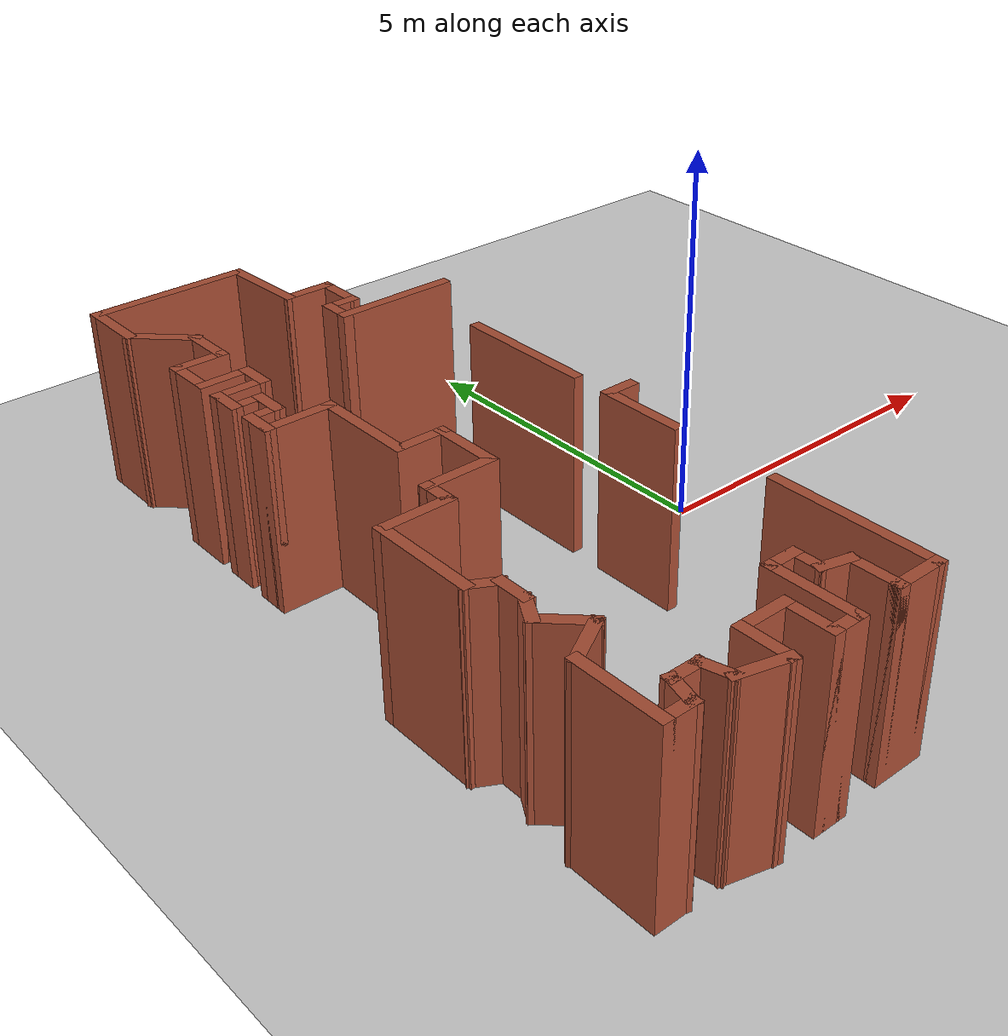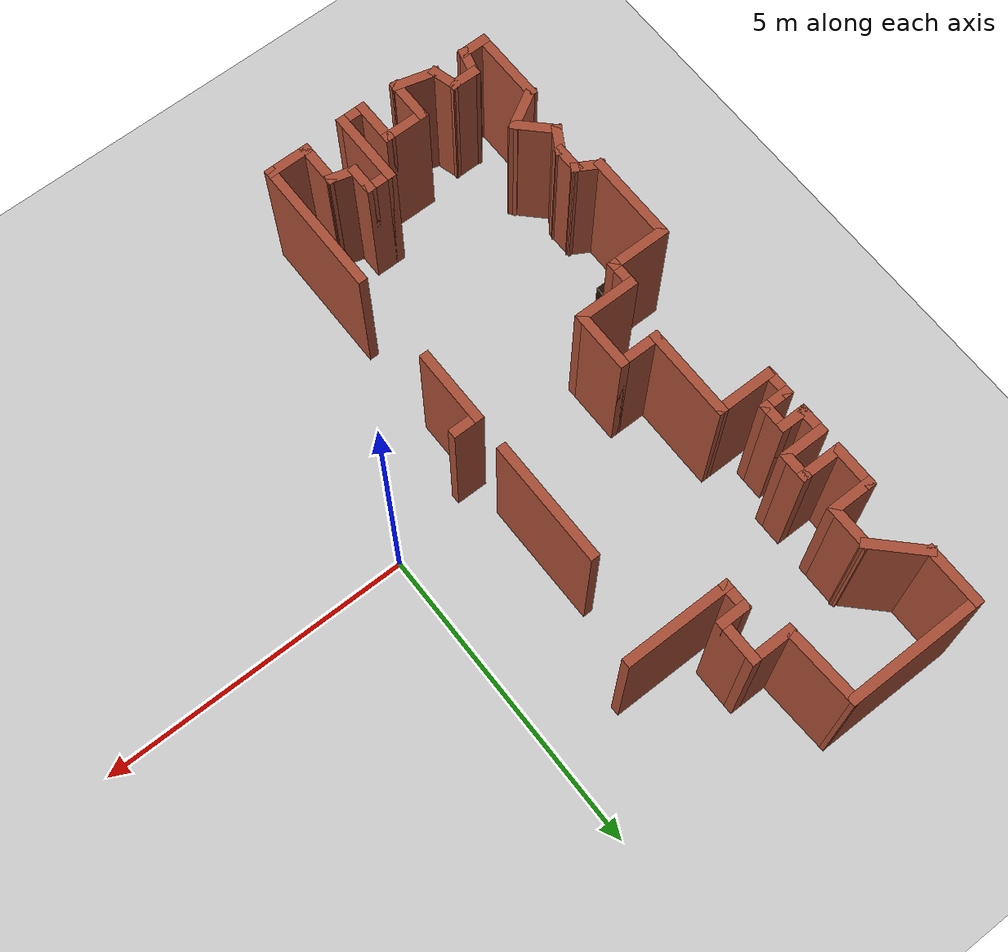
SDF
<sdf version="1.6">
 <world name="default">
  <model name="ground_plane">
   <static>1</static>
   <link name="link">
    <collision name="collision">
     <geometry><plane><normal>0 0 1</normal><size>100 100</size></plane></geometry>
     <surface>
      <contact><collide_bitmask>65535</collide_bitmask></contact>
      <friction><ode><mu>100</mu><mu2>50</mu2></ode></friction>
     </surface>
    </collision>
    <visual name="visual">
     <cast_shadows>0</cast_shadows>
     <geometry><plane><normal>0 0 1</normal><size>100 100</size></plane></geometry>
     <material>
      <script><uri>file://media/materials/scripts/gazebo.material</uri><name>Gazebo/Grey</name></script>
     </material>
    </visual>
   </link>
  </model>
  <model name="map_59">
   <pose>1.25432 0.29643 0 0 -0 0</pose>
   <link name="Wall_0">
    <collision name="Wall_0_Collision">
     <geometry><box><size>2.25 0.15 2.5</size></box></geometry>
     <pose>0 0 1.25 0 -0 0</pose>
    </collision>
    <visual name="Wall_0_Visual">
     <pose>0 0 1.25 0 -0 0</pose>
     <geometry><box><size>2.25 0.15 2.5</size></box></geometry>
     <material>
      <script><uri>file://media/materials/scripts/gazebo.material</uri><name>Gazebo/Bricks</name></script>
      <ambient>1 1 1 1</ambient>
     </material>
     <meta><layer>0</layer></meta>
    </visual>
    <pose>-5.34713 5.38602 0 0 -0 3.14159</pose>
   </link>
   <link name="Wall_1">
    <collision name="Wall_1_Collision">
     <geometry><box><size>1 0.15 2.5</size></box></geometry>
     <pose>0 0 1.25 0 -0 0</pose>
    </collision>
    <visual name="Wall_1_Visual">
     <pose>0 0 1.25 0 -0 0</pose>
     <geometry><box><size>1 0.15 2.5</size></box></geometry>
     <material>
      <script><uri>file://media/materials/scripts/gazebo.material</uri><name>Gazebo/Bricks</name></script>
      <ambient>1 1 1 1</ambient>
     </material>
     <meta><layer>0</layer></meta>
    </visual>
    <pose>-6.39713 4.96102 0 0 -0 -1.5708</pose>
   </link>
   <link name="Wall_166">
    <collision name="Wall_166_Collision">
     <geometry><box><size>1.25 0.15 2.5</size></box></geometry>
     <pose>0 0 1.25 0 -0 0</pose>
    </collision>
    <visual name="Wall_166_Visual">
     <pose>0 0 1.25 0 -0 0</pose>
     <geometry><box><size>1.25 0.15 2.5</size></box></geometry>
     <material>
      <script><uri>file://media/materials/scripts/gazebo.material</uri><name>Gazebo/Bricks</name></script>
      <ambient>1 1 1 1</ambient>
     </material>
     <meta><layer>0</layer></meta>
    </visual>
    <pose>-2.91013 -1.14005 0 0 -0 1.5708</pose>
   </link>
   <link name="Wall_167">
    <collision name="Wall_167_Collision">
     <geometry><box><size>0.5 0.15 2.5</size></box></geometry>
     <pose>0 0 1.25 0 -0 0</pose>
    </collision>
    <visual name="Wall_167_Visual">
     <pose>0 0 1.25 0 -0 0</pose>
     <geometry><box><size>0.5 0.15 2.5</size></box></geometry>
     <material>
      <script><uri>file://media/materials/scripts/gazebo.material</uri><name>Gazebo/Bricks</name></script>
      <ambient>1 1 1 1</ambient>
     </material>
     <meta><layer>0</layer></meta>
    </visual>
    <pose>-2.73513 -0.590047 0 0 -0 0</pose>
   </link>
   <link name="Wall_17">
    <collision name="Wall_17_Collision">
     <geometry><box><size>0.5 0.15 2.5</size></box></geometry>
     <pose>0 0 1.25 0 -0 0</pose>
    </collision>
    <visual name="Wall_17_Visual">
     <pose>0 0 1.25 0 -0 0</pose>
     <geometry><box><size>0.5 0.15 2.5</size></box></geometry>
     <material>
      <script><uri>file://media/materials/scripts/gazebo.material</uri><name>Gazebo/Bricks</name></script>
      <ambient>1 1 1 1</ambient>
     </material>
     <meta><layer>0</layer></meta>
    </visual>
    <pose>-6.39609 2.20998 0 0 -0 -1.5708</pose>
   </link>
   <link name="Wall_170">
    <collision name="Wall_170_Collision">
     <geometry><box><size>2 0.15 2.5</size></box></geometry>
     <pose>0 0 1.25 0 -0 0</pose>
    </collision>
    <visual name="Wall_170_Visual">
     <pose>0 0 1.25 0 -0 0</pose>
     <geometry><box><size>2 0.15 2.5</size></box></geometry>
     <material>
      <script><uri>file://media/materials/scripts/gazebo.material</uri><name>Gazebo/Bricks</name></script>
      <ambient>1 1 1 1</ambient>
     </material>
     <meta><layer>0</layer></meta>
    </visual>
    <pose>-2.91013 0.934953 0 0 -0 1.5708</pose>
   </link>
   <link name="Wall_173">
    <collision name="Wall_173_Collision">
     <geometry><box><size>1.75 0.15 2.5</size></box></geometry>
     <pose>0 0 1.25 0 -0 0</pose>
    </collision>
    <visual name="Wall_173_Visual">
     <pose>0 0 1.25 0 -0 0</pose>
     <geometry><box><size>1.75 0.15 2.5</size></box></geometry>
     <material>
      <script><uri>file://media/materials/scripts/gazebo.material</uri><name>Gazebo/Bricks</name></script>
      <ambient>1 1 1 1</ambient>
     </material>
     <meta><layer>0</layer></meta>
    </visual>
    <pose>-3.19052 3.25995 0 0 -0 3.14159</pose>
   </link>
   <link name="Wall_174">
    <collision name="Wall_174_Collision">
     <geometry><box><size>0.5 0.15 2.5</size></box></geometry>
     <pose>0 0 1.25 0 -0 0</pose>
    </collision>
    <visual name="Wall_174_Visual">
     <pose>0 0 1.25 0 -0 0</pose>
     <geometry><box><size>0.5 0.15 2.5</size></box></geometry>
     <material>
      <script><uri>file://media/materials/scripts/gazebo.material</uri><name>Gazebo/Bricks</name></script>
      <ambient>1 1 1 1</ambient>
     </material>
     <meta><layer>0</layer></meta>
    </visual>
    <pose>-3.99052 3.43495 0 0 -0 1.5708</pose>
   </link>
   <link name="Wall_175">
    <collision name="Wall_175_Collision">
     <geometry><box><size>0.5 0.15 2.5</size></box></geometry>
     <pose>0 0 1.25 0 -0 0</pose>
    </collision>
    <visual name="Wall_175_Visual">
     <pose>0 0 1.25 0 -0 0</pose>
     <geometry><box><size>0.5 0.15 2.5</size></box></geometry>
     <material>
      <script><uri>file://media/materials/scripts/gazebo.material</uri><name>Gazebo/Bricks</name></script>
      <ambient>1 1 1 1</ambient>
     </material>
     <meta><layer>0</layer></meta>
    </visual>
    <pose>-3.81552 3.60995 0 0 -0 0</pose>
   </link>
   <link name="Wall_176">
    <collision name="Wall_176_Collision">
     <geometry><box><size>0.75 0.15 2.5</size></box></geometry>
     <pose>0 0 1.25 0 -0 0</pose>
    </collision>
    <visual name="Wall_176_Visual">
     <pose>0 0 1.25 0 -0 0</pose>
     <geometry><box><size>0.75 0.15 2.5</size></box></geometry>
     <material>
      <script><uri>file://media/materials/scripts/gazebo.material</uri><name>Gazebo/Bricks</name></script>
      <ambient>1 1 1 1</ambient>
     </material>
     <meta><layer>0</layer></meta>
    </visual>
    <pose>-3.64052 3.90995 0 0 -0 1.5708</pose>
   </link>
   <link name="Wall_177">
    <collision name="Wall_177_Collision">
     <geometry><box><size>0.75 0.15 2.5</size></box></geometry>
     <pose>0 0 1.25 0 -0 0</pose>
    </collision>
    <visual name="Wall_177_Visual">
     <pose>0 0 1.25 0 -0 0</pose>
     <geometry><box><size>0.75 0.15 2.5</size></box></geometry>
     <material>
      <script><uri>file://media/materials/scripts/gazebo.material</uri><name>Gazebo/Bricks</name></script>
      <ambient>1 1 1 1</ambient>
     </material>
     <meta><layer>0</layer></meta>
    </visual>
    <pose>-3.94052 4.20995 0 0 -0 3.14159</pose>
   </link>
   <link name="Wall_178">
    <collision name="Wall_178_Collision">
     <geometry><box><size>1.32743 0.15 2.5</size></box></geometry>
     <pose>0 0 1.25 0 -0 0</pose>
    </collision>
    <visual name="Wall_178_Visual">
     <pose>0 0 1.25 0 -0 0</pose>
     <geometry><box><size>1.32743 0.15 2.5</size></box></geometry>
     <material>
      <script><uri>file://media/materials/scripts/gazebo.material</uri><name>Gazebo/Bricks</name></script>
      <ambient>1 1 1 1</ambient>
     </material>
     <meta><layer>0</layer></meta>
    </visual>
    <pose>-4.26883 4.79799 0 0 -0 1.6189</pose>
   </link>
   <link name="Wall_18">
    <collision name="Wall_18_Collision">
     <geometry><box><size>0.5 0.15 2.5</size></box></geometry>
     <pose>0 0 1.25 0 -0 0</pose>
    </collision>
    <visual name="Wall_18_Visual">
     <pose>0 0 1.25 0 -0 0</pose>
     <geometry><box><size>0.5 0.15 2.5</size></box></geometry>
     <material>
      <script><uri>file://media/materials/scripts/gazebo.material</uri><name>Gazebo/Bricks</name></script>
      <ambient>1 1 1 1</ambient>
     </material>
     <meta><layer>0</layer></meta>
    </visual>
    <pose>-6.22109 2.03498 0 0 -0 0</pose>
   </link>
   <link name="Wall_19">
    <collision name="Wall_19_Collision">
     <geometry><box><size>0.5 0.15 2.5</size></box></geometry>
     <pose>0 0 1.25 0 -0 0</pose>
    </collision>
    <visual name="Wall_19_Visual">
     <pose>0 0 1.25 0 -0 0</pose>
     <geometry><box><size>0.5 0.15 2.5</size></box></geometry>
     <material>
      <script><uri>file://media/materials/scripts/gazebo.material</uri><name>Gazebo/Bricks</name></script>
      <ambient>1 1 1 1</ambient>
     </material>
     <meta><layer>0</layer></meta>
    </visual>
    <pose>-6.04609 1.85998 0 0 -0 -1.5708</pose>
   </link>
   <link name="Wall_2">
    <collision name="Wall_2_Collision">
     <geometry><box><size>1 0.15 2.5</size></box></geometry>
     <pose>0 0 1.25 0 -0 0</pose>
    </collision>
    <visual name="Wall_2_Visual">
     <pose>0 0 1.25 0 -0 0</pose>
     <geometry><box><size>1 0.15 2.5</size></box></geometry>
     <material>
      <script><uri>file://media/materials/scripts/gazebo.material</uri><name>Gazebo/Bricks</name></script>
      <ambient>1 1 1 1</ambient>
     </material>
     <meta><layer>0</layer></meta>
    </visual>
    <pose>-6.09661 4.2355 0 0 -0 -0.785398</pose>
   </link>
   <link name="Wall_20">
    <collision name="Wall_20_Collision">
     <geometry><box><size>0.5 0.15 2.5</size></box></geometry>
     <pose>0 0 1.25 0 -0 0</pose>
    </collision>
    <visual name="Wall_20_Visual">
     <pose>0 0 1.25 0 -0 0</pose>
     <geometry><box><size>0.5 0.15 2.5</size></box></geometry>
     <material>
      <script><uri>file://media/materials/scripts/gazebo.material</uri><name>Gazebo/Bricks</name></script>
      <ambient>1 1 1 1</ambient>
     </material>
     <meta><layer>0</layer></meta>
    </visual>
    <pose>-6.22109 1.68498 0 0 -0 3.14159</pose>
   </link>
   <link name="Wall_21">
    <collision name="Wall_21_Collision">
     <geometry><box><size>0.5 0.15 2.5</size></box></geometry>
     <pose>0 0 1.25 0 -0 0</pose>
    </collision>
    <visual name="Wall_21_Visual">
     <pose>0 0 1.25 0 -0 0</pose>
     <geometry><box><size>0.5 0.15 2.5</size></box></geometry>
     <material>
      <script><uri>file://media/materials/scripts/gazebo.material</uri><name>Gazebo/Bricks</name></script>
      <ambient>1 1 1 1</ambient>
     </material>
     <meta><layer>0</layer></meta>
    </visual>
    <pose>-6.39609 1.50998 0 0 -0 -1.5708</pose>
   </link>
   <link name="Wall_24">
    <collision name="Wall_24_Collision">
     <geometry><box><size>1 0.15 2.5</size></box></geometry>
     <pose>0 0 1.25 0 -0 0</pose>
    </collision>
    <visual name="Wall_24_Visual">
     <pose>0 0 1.25 0 -0 0</pose>
     <geometry><box><size>1 0.15 2.5</size></box></geometry>
     <material>
      <script><uri>file://media/materials/scripts/gazebo.material</uri><name>Gazebo/Bricks</name></script>
      <ambient>1 1 1 1</ambient>
     </material>
     <meta><layer>0</layer></meta>
    </visual>
    <pose>-5.97109 1.33498 0 0 -0 0</pose>
   </link>
   <link name="Wall_25">
    <collision name="Wall_25_Collision">
     <geometry><box><size>1.5 0.15 2.5</size></box></geometry>
     <pose>0 0 1.25 0 -0 0</pose>
    </collision>
    <visual name="Wall_25_Visual">
     <pose>0 0 1.25 0 -0 0</pose>
     <geometry><box><size>1.5 0.15 2.5</size></box></geometry>
     <material>
      <script><uri>file://media/materials/scripts/gazebo.material</uri><name>Gazebo/Bricks</name></script>
      <ambient>1 1 1 1</ambient>
     </material>
     <meta><layer>0</layer></meta>
    </visual>
    <pose>-5.54609 0.65998 0 0 -0 -1.5708</pose>
   </link>
   <link name="Wall_26">
    <collision name="Wall_26_Collision">
     <geometry><box><size>0.75 0.15 2.5</size></box></geometry>
     <pose>0 0 1.25 0 -0 0</pose>
    </collision>
    <visual name="Wall_26_Visual">
     <pose>0 0 1.25 0 -0 0</pose>
     <geometry><box><size>0.75 0.15 2.5</size></box></geometry>
     <material>
      <script><uri>file://media/materials/scripts/gazebo.material</uri><name>Gazebo/Bricks</name></script>
      <ambient>1 1 1 1</ambient>
     </material>
     <meta><layer>0</layer></meta>
    </visual>
    <pose>-5.24609 -0.01502 0 0 -0 0</pose>
   </link>
   <link name="Wall_27">
    <collision name="Wall_27_Collision">
     <geometry><box><size>1 0.15 2.5</size></box></geometry>
     <pose>0 0 1.25 0 -0 0</pose>
    </collision>
    <visual name="Wall_27_Visual">
     <pose>0 0 1.25 0 -0 0</pose>
     <geometry><box><size>1 0.15 2.5</size></box></geometry>
     <material>
      <script><uri>file://media/materials/scripts/gazebo.material</uri><name>Gazebo/Bricks</name></script>
      <ambient>1 1 1 1</ambient>
     </material>
     <meta><layer>0</layer></meta>
    </visual>
    <pose>-4.94609 -0.44002 0 0 -0 -1.5708</pose>
   </link>
   <link name="Wall_28">
    <collision name="Wall_28_Collision">
     <geometry><box><size>1 0.15 2.5</size></box></geometry>
     <pose>0 0 1.25 0 -0 0</pose>
    </collision>
    <visual name="Wall_28_Visual">
     <pose>0 0 1.25 0 -0 0</pose>
     <geometry><box><size>1 0.15 2.5</size></box></geometry>
     <material>
      <script><uri>file://media/materials/scripts/gazebo.material</uri><name>Gazebo/Bricks</name></script>
      <ambient>1 1 1 1</ambient>
     </material>
     <meta><layer>0</layer></meta>
    </visual>
    <pose>-5.37109 -0.86502 0 0 -0 3.14159</pose>
   </link>
   <link name="Wall_29">
    <collision name="Wall_29_Collision">
     <geometry><box><size>0.5 0.15 2.5</size></box></geometry>
     <pose>0 0 1.25 0 -0 0</pose>
    </collision>
    <visual name="Wall_29_Visual">
     <pose>0 0 1.25 0 -0 0</pose>
     <geometry><box><size>0.5 0.15 2.5</size></box></geometry>
     <material>
      <script><uri>file://media/materials/scripts/gazebo.material</uri><name>Gazebo/Bricks</name></script>
      <ambient>1 1 1 1</ambient>
     </material>
     <meta><layer>0</layer></meta>
    </visual>
    <pose>-5.79609 -1.04002 0 0 -0 -1.5708</pose>
   </link>
   <link name="Wall_3">
    <collision name="Wall_3_Collision">
     <geometry><box><size>0.75 0.15 2.5</size></box></geometry>
     <pose>0 0 1.25 0 -0 0</pose>
    </collision>
    <visual name="Wall_3_Visual">
     <pose>0 0 1.25 0 -0 0</pose>
     <geometry><box><size>0.75 0.15 2.5</size></box></geometry>
     <material>
      <script><uri>file://media/materials/scripts/gazebo.material</uri><name>Gazebo/Bricks</name></script>
      <ambient>1 1 1 1</ambient>
     </material>
     <meta><layer>0</layer></meta>
    </visual>
    <pose>-5.79609 3.63498 0 0 -0 -1.5708</pose>
   </link>
   <link name="Wall_32">
    <collision name="Wall_32_Collision">
     <geometry><box><size>1 0.15 2.5</size></box></geometry>
     <pose>0 0 1.25 0 -0 0</pose>
    </collision>
    <visual name="Wall_32_Visual">
     <pose>0 0 1.25 0 -0 0</pose>
     <geometry><box><size>1 0.15 2.5</size></box></geometry>
     <material>
      <script><uri>file://media/materials/scripts/gazebo.material</uri><name>Gazebo/Bricks</name></script>
      <ambient>1 1 1 1</ambient>
     </material>
     <meta><layer>0</layer></meta>
    </visual>
    <pose>-6.22109 -1.21502 0 0 -0 3.14159</pose>
   </link>
   <link name="Wall_33">
    <collision name="Wall_33_Collision">
     <geometry><box><size>1.5 0.15 2.5</size></box></geometry>
     <pose>0 0 1.25 0 -0 0</pose>
    </collision>
    <visual name="Wall_33_Visual">
     <pose>0 0 1.25 0 -0 0</pose>
     <geometry><box><size>1.5 0.15 2.5</size></box></geometry>
     <material>
      <script><uri>file://media/materials/scripts/gazebo.material</uri><name>Gazebo/Bricks</name></script>
      <ambient>1 1 1 1</ambient>
     </material>
     <meta><layer>0</layer></meta>
    </visual>
    <pose>-6.64609 -1.89002 0 0 -0 -1.5708</pose>
   </link>
   <link name="Wall_34">
    <collision name="Wall_34_Collision">
     <geometry><box><size>0.5 0.15 2.5</size></box></geometry>
     <pose>0 0 1.25 0 -0 0</pose>
    </collision>
    <visual name="Wall_34_Visual">
     <pose>0 0 1.25 0 -0 0</pose>
     <geometry><box><size>0.5 0.15 2.5</size></box></geometry>
     <material>
      <script><uri>file://media/materials/scripts/gazebo.material</uri><name>Gazebo/Bricks</name></script>
      <ambient>1 1 1 1</ambient>
     </material>
     <meta><layer>0</layer></meta>
    </visual>
    <pose>-6.49454 -2.65252 0 0 -0 -0.523599</pose>
   </link>
   <link name="Wall_35">
    <collision name="Wall_35_Collision">
     <geometry><box><size>0.5 0.15 2.5</size></box></geometry>
     <pose>0 0 1.25 0 -0 0</pose>
    </collision>
    <visual name="Wall_35_Visual">
     <pose>0 0 1.25 0 -0 0</pose>
     <geometry><box><size>0.5 0.15 2.5</size></box></geometry>
     <material>
      <script><uri>file://media/materials/scripts/gazebo.material</uri><name>Gazebo/Bricks</name></script>
      <ambient>1 1 1 1</ambient>
     </material>
     <meta><layer>0</layer></meta>
    </visual>
    <pose>-6.34298 -2.91502 0 0 -0 -1.5708</pose>
   </link>
   <link name="Wall_36">
    <collision name="Wall_36_Collision">
     <geometry><box><size>0.5 0.15 2.5</size></box></geometry>
     <pose>0 0 1.25 0 -0 0</pose>
    </collision>
    <visual name="Wall_36_Visual">
     <pose>0 0 1.25 0 -0 0</pose>
     <geometry><box><size>0.5 0.15 2.5</size></box></geometry>
     <material>
      <script><uri>file://media/materials/scripts/gazebo.material</uri><name>Gazebo/Bricks</name></script>
      <ambient>1 1 1 1</ambient>
     </material>
     <meta><layer>0</layer></meta>
    </visual>
    <pose>-6.43048 -3.24157 0 0 -0 -2.0944</pose>
   </link>
   <link name="Wall_37">
    <collision name="Wall_37_Collision">
     <geometry><box><size>0.75 0.15 2.5</size></box></geometry>
     <pose>0 0 1.25 0 -0 0</pose>
    </collision>
    <visual name="Wall_37_Visual">
     <pose>0 0 1.25 0 -0 0</pose>
     <geometry><box><size>0.75 0.15 2.5</size></box></geometry>
     <material>
      <script><uri>file://media/materials/scripts/gazebo.material</uri><name>Gazebo/Bricks</name></script>
      <ambient>1 1 1 1</ambient>
     </material>
     <meta><layer>0</layer></meta>
    </visual>
    <pose>-6.30585 -3.60526 0 0 -0 -0.785398</pose>
   </link>
   <link name="Wall_38">
    <collision name="Wall_38_Collision">
     <geometry><box><size>0.75 0.15 2.5</size></box></geometry>
     <pose>0 0 1.25 0 -0 0</pose>
    </collision>
    <visual name="Wall_38_Visual">
     <pose>0 0 1.25 0 -0 0</pose>
     <geometry><box><size>0.75 0.15 2.5</size></box></geometry>
     <material>
      <script><uri>file://media/materials/scripts/gazebo.material</uri><name>Gazebo/Bricks</name></script>
      <ambient>1 1 1 1</ambient>
     </material>
     <meta><layer>0</layer></meta>
    </visual>
    <pose>-6.35353 -3.96739 0 0 -0 -2.61799</pose>
   </link>
   <link name="Wall_39">
    <collision name="Wall_39_Collision">
     <geometry><box><size>1.25 0.15 2.5</size></box></geometry>
     <pose>0 0 1.25 0 -0 0</pose>
    </collision>
    <visual name="Wall_39_Visual">
     <pose>0 0 1.25 0 -0 0</pose>
     <geometry><box><size>1.25 0.15 2.5</size></box></geometry>
     <material>
      <script><uri>file://media/materials/scripts/gazebo.material</uri><name>Gazebo/Bricks</name></script>
      <ambient>1 1 1 1</ambient>
     </material>
     <meta><layer>0</layer></meta>
    </visual>
    <pose>-6.61333 -4.66739 0 0 -0 -1.5708</pose>
   </link>
   <link name="Wall_4">
    <collision name="Wall_4_Collision">
     <geometry><box><size>0.75 0.15 2.5</size></box></geometry>
     <pose>0 0 1.25 0 -0 0</pose>
    </collision>
    <visual name="Wall_4_Visual">
     <pose>0 0 1.25 0 -0 0</pose>
     <geometry><box><size>0.75 0.15 2.5</size></box></geometry>
     <material>
      <script><uri>file://media/materials/scripts/gazebo.material</uri><name>Gazebo/Bricks</name></script>
      <ambient>1 1 1 1</ambient>
     </material>
     <meta><layer>0</layer></meta>
    </visual>
    <pose>-6.09609 3.33498 0 0 -0 3.14159</pose>
   </link>
   <link name="Wall_40">
    <collision name="Wall_40_Collision">
     <geometry><box><size>0.5 0.15 2.5</size></box></geometry>
     <pose>0 0 1.25 0 -0 0</pose>
    </collision>
    <visual name="Wall_40_Visual">
     <pose>0 0 1.25 0 -0 0</pose>
     <geometry><box><size>0.5 0.15 2.5</size></box></geometry>
     <material>
      <script><uri>file://media/materials/scripts/gazebo.material</uri><name>Gazebo/Bricks</name></script>
      <ambient>1 1 1 1</ambient>
     </material>
     <meta><layer>0</layer></meta>
    </visual>
    <pose>-6.43833 -5.21739 0 0 -0 0</pose>
   </link>
   <link name="Wall_41">
    <collision name="Wall_41_Collision">
     <geometry><box><size>0.5 0.15 2.5</size></box></geometry>
     <pose>0 0 1.25 0 -0 0</pose>
    </collision>
    <visual name="Wall_41_Visual">
     <pose>0 0 1.25 0 -0 0</pose>
     <geometry><box><size>0.5 0.15 2.5</size></box></geometry>
     <material>
      <script><uri>file://media/materials/scripts/gazebo.material</uri><name>Gazebo/Bricks</name></script>
      <ambient>1 1 1 1</ambient>
     </material>
     <meta><layer>0</layer></meta>
    </visual>
    <pose>-6.21804 -5.04835 0 0 -0 1.309</pose>
   </link>
   <link name="Wall_42">
    <collision name="Wall_42_Collision">
     <geometry><box><size>0.5 0.15 2.5</size></box></geometry>
     <pose>0 0 1.25 0 -0 0</pose>
    </collision>
    <visual name="Wall_42_Visual">
     <pose>0 0 1.25 0 -0 0</pose>
     <geometry><box><size>0.5 0.15 2.5</size></box></geometry>
     <material>
      <script><uri>file://media/materials/scripts/gazebo.material</uri><name>Gazebo/Bricks</name></script>
      <ambient>1 1 1 1</ambient>
     </material>
     <meta><layer>0</layer></meta>
    </visual>
    <pose>-5.99775 -4.87932 0 0 -0 0</pose>
   </link>
   <link name="Wall_43">
    <collision name="Wall_43_Collision">
     <geometry><box><size>0.5 0.15 2.5</size></box></geometry>
     <pose>0 0 1.25 0 -0 0</pose>
    </collision>
    <visual name="Wall_43_Visual">
     <pose>0 0 1.25 0 -0 0</pose>
     <geometry><box><size>0.5 0.15 2.5</size></box></geometry>
     <material>
      <script><uri>file://media/materials/scripts/gazebo.material</uri><name>Gazebo/Bricks</name></script>
      <ambient>1 1 1 1</ambient>
     </material>
     <meta><layer>0</layer></meta>
    </visual>
    <pose>-5.77745 -5.04835 0 0 -0 -1.309</pose>
   </link>
   <link name="Wall_44">
    <collision name="Wall_44_Collision">
     <geometry><box><size>0.75 0.15 2.5</size></box></geometry>
     <pose>0 0 1.25 0 -0 0</pose>
    </collision>
    <visual name="Wall_44_Visual">
     <pose>0 0 1.25 0 -0 0</pose>
     <geometry><box><size>0.75 0.15 2.5</size></box></geometry>
     <material>
      <script><uri>file://media/materials/scripts/gazebo.material</uri><name>Gazebo/Bricks</name></script>
      <ambient>1 1 1 1</ambient>
     </material>
     <meta><layer>0</layer></meta>
    </visual>
    <pose>-5.44238 -5.29504 0 0 -0 -0.261799</pose>
   </link>
   <link name="Wall_45">
    <collision name="Wall_45_Collision">
     <geometry><box><size>0.75 0.15 2.5</size></box></geometry>
     <pose>0 0 1.25 0 -0 0</pose>
    </collision>
    <visual name="Wall_45_Visual">
     <pose>0 0 1.25 0 -0 0</pose>
     <geometry><box><size>0.75 0.15 2.5</size></box></geometry>
     <material>
      <script><uri>file://media/materials/scripts/gazebo.material</uri><name>Gazebo/Bricks</name></script>
      <ambient>1 1 1 1</ambient>
     </material>
     <meta><layer>0</layer></meta>
    </visual>
    <pose>-5.15261 -5.07268 0 0 -0 1.5708</pose>
   </link>
   <link name="Wall_48">
    <collision name="Wall_48_Collision">
     <geometry><box><size>0.75 0.15 2.5</size></box></geometry>
     <pose>0 0 1.25 0 -0 0</pose>
    </collision>
    <visual name="Wall_48_Visual">
     <pose>0 0 1.25 0 -0 0</pose>
     <geometry><box><size>0.75 0.15 2.5</size></box></geometry>
     <material>
      <script><uri>file://media/materials/scripts/gazebo.material</uri><name>Gazebo/Bricks</name></script>
      <ambient>1 1 1 1</ambient>
     </material>
     <meta><layer>0</layer></meta>
    </visual>
    <pose>-4.8526 -4.77268 0 0 -0 0</pose>
   </link>
   <link name="Wall_49">
    <collision name="Wall_49_Collision">
     <geometry><box><size>0.75 0.15 2.5</size></box></geometry>
     <pose>0 0 1.25 0 -0 0</pose>
    </collision>
    <visual name="Wall_49_Visual">
     <pose>0 0 1.25 0 -0 0</pose>
     <geometry><box><size>0.75 0.15 2.5</size></box></geometry>
     <material>
      <script><uri>file://media/materials/scripts/gazebo.material</uri><name>Gazebo/Bricks</name></script>
      <ambient>1 1 1 1</ambient>
     </material>
     <meta><layer>0</layer></meta>
    </visual>
    <pose>-4.5526 -5.07268 0 0 -0 -1.5708</pose>
   </link>
   <link name="Wall_5">
    <collision name="Wall_5_Collision">
     <geometry><box><size>0.75 0.15 2.5</size></box></geometry>
     <pose>0 0 1.25 0 -0 0</pose>
    </collision>
    <visual name="Wall_5_Visual">
     <pose>0 0 1.25 0 -0 0</pose>
     <geometry><box><size>0.75 0.15 2.5</size></box></geometry>
     <material>
      <script><uri>file://media/materials/scripts/gazebo.material</uri><name>Gazebo/Bricks</name></script>
      <ambient>1 1 1 1</ambient>
     </material>
     <meta><layer>0</layer></meta>
    </visual>
    <pose>-6.39609 3.03498 0 0 -0 -1.5708</pose>
   </link>
   <link name="Wall_50">
    <collision name="Wall_50_Collision">
     <geometry><box><size>0.5 0.15 2.5</size></box></geometry>
     <pose>0 0 1.25 0 -0 0</pose>
    </collision>
    <visual name="Wall_50_Visual">
     <pose>0 0 1.25 0 -0 0</pose>
     <geometry><box><size>0.5 0.15 2.5</size></box></geometry>
     <material>
      <script><uri>file://media/materials/scripts/gazebo.material</uri><name>Gazebo/Bricks</name></script>
      <ambient>1 1 1 1</ambient>
     </material>
     <meta><layer>0</layer></meta>
    </visual>
    <pose>-4.3776 -5.37268 0 0 -0 0</pose>
   </link>
   <link name="Wall_53">
    <collision name="Wall_53_Collision">
     <geometry><box><size>1.25 0.15 2.5</size></box></geometry>
     <pose>0 0 1.25 0 -0 0</pose>
    </collision>
    <visual name="Wall_53_Visual">
     <pose>0 0 1.25 0 -0 0</pose>
     <geometry><box><size>1.25 0.15 2.5</size></box></geometry>
     <material>
      <script><uri>file://media/materials/scripts/gazebo.material</uri><name>Gazebo/Bricks</name></script>
      <ambient>1 1 1 1</ambient>
     </material>
     <meta><layer>0</layer></meta>
    </visual>
    <pose>-4.20261 -4.82268 0 0 -0 1.5708</pose>
   </link>
   <link name="Wall_54">
    <collision name="Wall_54_Collision">
     <geometry><box><size>0.5 0.15 2.5</size></box></geometry>
     <pose>0 0 1.25 0 -0 0</pose>
    </collision>
    <visual name="Wall_54_Visual">
     <pose>0 0 1.25 0 -0 0</pose>
     <geometry><box><size>0.5 0.15 2.5</size></box></geometry>
     <material>
      <script><uri>file://media/materials/scripts/gazebo.material</uri><name>Gazebo/Bricks</name></script>
      <ambient>1 1 1 1</ambient>
     </material>
     <meta><layer>0</layer></meta>
    </visual>
    <pose>-4.02761 -4.27268 0 0 -0 0</pose>
   </link>
   <link name="Wall_55">
    <collision name="Wall_55_Collision">
     <geometry><box><size>0.5 0.15 2.5</size></box></geometry>
     <pose>0 0 1.25 0 -0 0</pose>
    </collision>
    <visual name="Wall_55_Visual">
     <pose>0 0 1.25 0 -0 0</pose>
     <geometry><box><size>0.5 0.15 2.5</size></box></geometry>
     <material>
      <script><uri>file://media/materials/scripts/gazebo.material</uri><name>Gazebo/Bricks</name></script>
      <ambient>1 1 1 1</ambient>
     </material>
     <meta><layer>0</layer></meta>
    </visual>
    <pose>-3.85261 -4.44768 0 0 -0 -1.5708</pose>
   </link>
   <link name="Wall_56">
    <collision name="Wall_56_Collision">
     <geometry><box><size>0.5 0.15 2.5</size></box></geometry>
     <pose>0 0 1.25 0 -0 0</pose>
    </collision>
    <visual name="Wall_56_Visual">
     <pose>0 0 1.25 0 -0 0</pose>
     <geometry><box><size>0.5 0.15 2.5</size></box></geometry>
     <material>
      <script><uri>file://media/materials/scripts/gazebo.material</uri><name>Gazebo/Bricks</name></script>
      <ambient>1 1 1 1</ambient>
     </material>
     <meta><layer>0</layer></meta>
    </visual>
    <pose>-3.68357 -4.66798 0 0 -0 -0.261799</pose>
   </link>
   <link name="Wall_57">
    <collision name="Wall_57_Collision">
     <geometry><box><size>0.75 0.15 2.5</size></box></geometry>
     <pose>0 0 1.25 0 -0 0</pose>
    </collision>
    <visual name="Wall_57_Visual">
     <pose>0 0 1.25 0 -0 0</pose>
     <geometry><box><size>0.75 0.15 2.5</size></box></geometry>
     <material>
      <script><uri>file://media/materials/scripts/gazebo.material</uri><name>Gazebo/Bricks</name></script>
      <ambient>1 1 1 1</ambient>
     </material>
     <meta><layer>0</layer></meta>
    </visual>
    <pose>-3.51453 -5.01327 0 0 -0 -1.5708</pose>
   </link>
   <link name="Wall_58">
    <collision name="Wall_58_Collision">
     <geometry><box><size>0.75 0.15 2.5</size></box></geometry>
     <pose>0 0 1.25 0 -0 0</pose>
    </collision>
    <visual name="Wall_58_Visual">
     <pose>0 0 1.25 0 -0 0</pose>
     <geometry><box><size>0.75 0.15 2.5</size></box></geometry>
     <material>
      <script><uri>file://media/materials/scripts/gazebo.material</uri><name>Gazebo/Bricks</name></script>
      <ambient>1 1 1 1</ambient>
     </material>
     <meta><layer>0</layer></meta>
    </visual>
    <pose>-3.21453 -5.31327 0 0 -0 0</pose>
   </link>
   <link name="Wall_59">
    <collision name="Wall_59_Collision">
     <geometry><box><size>2.25 0.15 2.5</size></box></geometry>
     <pose>0 0 1.25 0 -0 0</pose>
    </collision>
    <visual name="Wall_59_Visual">
     <pose>0 0 1.25 0 -0 0</pose>
     <geometry><box><size>2.25 0.15 2.5</size></box></geometry>
     <material>
      <script><uri>file://media/materials/scripts/gazebo.material</uri><name>Gazebo/Bricks</name></script>
      <ambient>1 1 1 1</ambient>
     </material>
     <meta><layer>0</layer></meta>
    </visual>
    <pose>-2.91453 -4.26327 0 0 -0 1.5708</pose>
   </link>
   <link name="Wall_6">
    <collision name="Wall_6_Collision">
     <geometry><box><size>0.75 0.15 2.5</size></box></geometry>
     <pose>0 0 1.25 0 -0 0</pose>
    </collision>
    <visual name="Wall_6_Visual">
     <pose>0 0 1.25 0 -0 0</pose>
     <geometry><box><size>0.75 0.15 2.5</size></box></geometry>
     <material>
      <script><uri>file://media/materials/scripts/gazebo.material</uri><name>Gazebo/Bricks</name></script>
      <ambient>1 1 1 1</ambient>
     </material>
     <meta><layer>0</layer></meta>
    </visual>
    <pose>-6.09609 2.73498 0 0 -0 0</pose>
   </link>
   <link name="Wall_7">
    <collision name="Wall_7_Collision">
     <geometry><box><size>0.5 0.15 2.5</size></box></geometry>
     <pose>0 0 1.25 0 -0 0</pose>
    </collision>
    <visual name="Wall_7_Visual">
     <pose>0 0 1.25 0 -0 0</pose>
     <geometry><box><size>0.5 0.15 2.5</size></box></geometry>
     <material>
      <script><uri>file://media/materials/scripts/gazebo.material</uri><name>Gazebo/Bricks</name></script>
      <ambient>1 1 1 1</ambient>
     </material>
     <meta><layer>0</layer></meta>
    </visual>
    <pose>-5.79609 2.55998 0 0 -0 -1.5708</pose>
   </link>
   <link name="Wall_8">
    <collision name="Wall_8_Collision">
     <geometry><box><size>0.75 0.15 2.5</size></box></geometry>
     <pose>0 0 1.25 0 -0 0</pose>
    </collision>
    <visual name="Wall_8_Visual">
     <pose>0 0 1.25 0 -0 0</pose>
     <geometry><box><size>0.75 0.15 2.5</size></box></geometry>
     <material>
      <script><uri>file://media/materials/scripts/gazebo.material</uri><name>Gazebo/Bricks</name></script>
      <ambient>1 1 1 1</ambient>
     </material>
     <meta><layer>0</layer></meta>
    </visual>
    <pose>-6.09609 2.38498 0 0 -0 3.14159</pose>
   </link>
   <static>1</static>
  </model>
  <model name="6_Cube_StorageE">
   <link name="Wall_0">
    <pose>0 0 0.01 0 -0 0</pose>
    <inertial>
     <mass>1.6201</mass>
     <inertia><ixx>0.0119</ixx><iyy>0.0631</iyy><izz>0.0513</izz><ixy>0</ixy><ixz>0</ixz><iyz>0</iyz></inertia>
    </inertial>
    <collision name="Wall_0_Collision"><geometry><box><size>0.616 0.296 0.02</size></box></geometry></collision>
    <visual name="Wall_0_Visual">
     <geometry><box><size>0.616 0.296 0.02</size></box></geometry>
     <material>
      <script><uri>file://media/materials/scripts/gazebo.material</uri><name>Gazebo/Grey</name></script>
      <ambient>0.105882 0.0509804 0 1</ambient>
     </material>
    </visual>
   </link>
   <joint name="0_2" type="fixed">
    <pose>-0.308 0 0 0 -0 0</pose>
    <parent>Wall_2</parent>
    <child>Wall_0</child>
    <axis>
     <xyz>1 0 0</xyz>
     <use_parent_model_frame>0</use_parent_model_frame>
     <limit><lower>-1e+16</lower><upper>1e+16</upper></limit>
    </axis>
   </joint>
   <joint name="0_12" type="fixed">
    <parent>Wall_12</parent>
    <child>Wall_0</child>
    <axis>
     <xyz>0 0 1</xyz>
     <use_parent_model_frame>0</use_parent_model_frame>
     <limit><lower>-1e+16</lower><upper>1e+16</upper></limit>
    </axis>
   </joint>
   <joint name="0_4" type="fixed">
    <pose>0.308 0 0 0 -0 0</pose>
    <parent>Wall_4</parent>
    <child>Wall_0</child>
    <axis>
     <xyz>1 0 0</xyz>
     <use_parent_model_frame>0</use_parent_model_frame>
     <limit><lower>-1e+16</lower><upper>1e+16</upper></limit>
    </axis>
   </joint>
   <link name="Wall_10">
    <pose>0 0 0.61 0 -0 0</pose>
    <inertial>
     <mass>1.6201</mass>
     <inertia><ixx>0.0119</ixx><iyy>0.0631</iyy><izz>0.0513</izz><ixy>0</ixy><ixz>0</ixz><iyz>0</iyz></inertia>
    </inertial>
    <collision name="Wall_10_Collision"><geometry><box><size>0.616 0.296 0.02</size></box></geometry></collision>
    <visual name="Wall_10_Visual">
     <geometry><box><size>0.616 0.296 0.02</size></box></geometry>
     <material>
      <script><uri>file://media/materials/scripts/gazebo.material</uri><name>Gazebo/Grey</name></script>
      <ambient>0.105882 0.0509804 0 1</ambient>
     </material>
    </visual>
   </link>
   <joint name="10_2" type="fixed">
    <pose>-0.308 0 0 0 -0 0</pose>
    <parent>Wall_2</parent>
    <child>Wall_10</child>
    <axis>
     <xyz>1 0 0</xyz>
     <use_parent_model_frame>0</use_parent_model_frame>
     <limit><lower>-1e+16</lower><upper>1e+16</upper></limit>
    </axis>
   </joint>
   <joint name="10_12" type="fixed">
    <parent>Wall_12</parent>
    <child>Wall_10</child>
    <axis>
     <xyz>0 0 1</xyz>
     <use_parent_model_frame>0</use_parent_model_frame>
     <limit><lower>-1e+16</lower><upper>1e+16</upper></limit>
    </axis>
   </joint>
   <joint name="10_4" type="fixed">
    <pose>0.308 0 0 0 -0 0</pose>
    <parent>Wall_4</parent>
    <child>Wall_10</child>
    <axis>
     <xyz>1 0 0</xyz>
     <use_parent_model_frame>0</use_parent_model_frame>
     <limit><lower>-1e+16</lower><upper>1e+16</upper></limit>
    </axis>
   </joint>
   <link name="Wall_12">
    <pose>0 0 0.4575 0 -0 0</pose>
    <inertial>
     <mass>2.4065</mass>
     <inertia><ixx>0.0177</ixx><iyy>0.1855</iyy><izz>0.168</izz><ixy>0</ixy><ixz>0</ixz><iyz>0</iyz></inertia>
    </inertial>
    <collision name="Wall_12_Collision"><geometry><box><size>0.02 0.296 0.915</size></box></geometry></collision>
    <visual name="Wall_12_Visual">
     <geometry><box><size>0.02 0.296 0.915</size></box></geometry>
     <material>
      <script><uri>file://media/materials/scripts/gazebo.material</uri><name>Gazebo/Grey</name></script>
      <ambient>0.105882 0.0509804 0 1</ambient>
     </material>
    </visual>
   </link>
   <link name="Wall_2">
    <pose>-0.298 0 0.4575 0 -0 0</pose>
    <inertial>
     <mass>2.4065</mass>
     <inertia><ixx>0.0177</ixx><iyy>0.1855</iyy><izz>0.168</izz><ixy>0</ixy><ixz>0</ixz><iyz>0</iyz></inertia>
    </inertial>
    <collision name="Wall_2_Collision"><geometry><box><size>0.02 0.296 0.915</size></box></geometry></collision>
    <visual name="Wall_2_Visual">
     <geometry><box><size>0.02 0.296 0.915</size></box></geometry>
     <material>
      <script><uri>file://media/materials/scripts/gazebo.material</uri><name>Gazebo/Grey</name></script>
      <ambient>0.105882 0.0509804 0 1</ambient>
     </material>
    </visual>
   </link>
   <link name="Wall_4">
    <pose>0.298 0 0.4575 0 -0 0</pose>
    <inertial>
     <mass>2.4065</mass>
     <inertia><ixx>0.0177</ixx><iyy>0.1855</iyy><izz>0.168</izz><ixy>0</ixy><ixz>0</ixz><iyz>0</iyz></inertia>
    </inertial>
    <collision name="Wall_4_Collision"><geometry><box><size>0.02 0.296 0.915</size></box></geometry></collision>
    <visual name="Wall_4_Visual">
     <geometry><box><size>0.02 0.296 0.915</size></box></geometry>
     <material>
      <script><uri>file://media/materials/scripts/gazebo.material</uri><name>Gazebo/Grey</name></script>
      <ambient>0.105882 0.0509804 0 1</ambient>
     </material>
    </visual>
   </link>
   <link name="Wall_6">
    <pose>0 0 0.905 0 -0 0</pose>
    <inertial>
     <mass>1.6201</mass>
     <inertia><ixx>0.0119</ixx><iyy>0.0631</iyy><izz>0.0513</izz><ixy>0</ixy><ixz>0</ixz><iyz>0</iyz></inertia>
    </inertial>
    <collision name="Wall_6_Collision"><geometry><box><size>0.616 0.296 0.02</size></box></geometry></collision>
    <visual name="Wall_6_Visual">
     <geometry><box><size>0.616 0.296 0.02</size></box></geometry>
     <material>
      <script><uri>file://media/materials/scripts/gazebo.material</uri><name>Gazebo/Grey</name></script>
      <ambient>0.105882 0.0509804 0 1</ambient>
     </material>
    </visual>
   </link>
   <joint name="6_2" type="fixed">
    <pose>-0.308 0 0 0 -0 0</pose>
    <parent>Wall_2</parent>
    <child>Wall_6</child>
    <axis>
     <xyz>2 0 0</xyz>
     <use_parent_model_frame>0</use_parent_model_frame>
     <limit><lower>-1e+16</lower><upper>1e+16</upper></limit>
    </axis>
   </joint>
   <joint name="6_12" type="fixed">
    <parent>Wall_12</parent>
    <child>Wall_6</child>
    <axis>
     <xyz>0 0 1</xyz>
     <use_parent_model_frame>0</use_parent_model_frame>
     <limit><lower>-1e+16</lower><upper>1e+16</upper></limit>
    </axis>
   </joint>
   <joint name="6_4" type="fixed">
    <pose>0.308 0 0 0 -0 0</pose>
    <parent>Wall_4</parent>
    <child>Wall_6</child>
    <axis>
     <xyz>1 0 0</xyz>
     <use_parent_model_frame>0</use_parent_model_frame>
     <limit><lower>-1e+16</lower><upper>1e+16</upper></limit>
    </axis>
   </joint>
   <link name="Wall_8">
    <pose>0 0 0.305 0 -0 0</pose>
    <inertial>
     <mass>1.6201</mass>
     <inertia><ixx>0.0119</ixx><iyy>0.0631</iyy><izz>0.0513</izz><ixy>0</ixy><ixz>0</ixz><iyz>0</iyz></inertia>
    </inertial>
    <collision name="Wall_8_Collision"><geometry><box><size>0.616 0.296 0.02</size></box></geometry></collision>
    <visual name="Wall_8_Visual">
     <geometry><box><size>0.616 0.296 0.02</size></box></geometry>
     <material>
      <script><uri>file://media/materials/scripts/gazebo.material</uri><name>Gazebo/Grey</name></script>
      <ambient>0.105882 0.0509804 0 1</ambient>
     </material>
    </visual>
   </link>
   <joint name="8_2" type="fixed">
    <pose>-0.308 0 0 0 -0 0</pose>
    <parent>Wall_2</parent>
    <child>Wall_8</child>
    <axis>
     <xyz>1 0 0</xyz>
     <use_parent_model_frame>0</use_parent_model_frame>
     <limit><lower>-1e+16</lower><upper>1e+16</upper></limit>
    </axis>
   </joint>
   <joint name="8_12" type="fixed">
    <parent>Wall_12</parent>
    <child>Wall_8</child>
    <axis>
     <xyz>0 0 1</xyz>
     <use_parent_model_frame>0</use_parent_model_frame>
     <limit><lower>-1e+16</lower><upper>1e+16</upper></limit>
    </axis>
   </joint>
   <joint name="8_4" type="fixed">
    <pose>0.308 0 0 0 -0 0</pose>
    <parent>Wall_4</parent>
    <child>Wall_8</child>
    <axis>
     <xyz>1 0 0</xyz>
     <use_parent_model_frame>0</use_parent_model_frame>
     <limit><lower>-1e+16</lower><upper>1e+16</upper></limit>
    </axis>
   </joint>
   <static>1</static>
   <pose>-4.98948 -1.21109 0 0 -0 0</pose>
  </model>
 </world>
</sdf>
